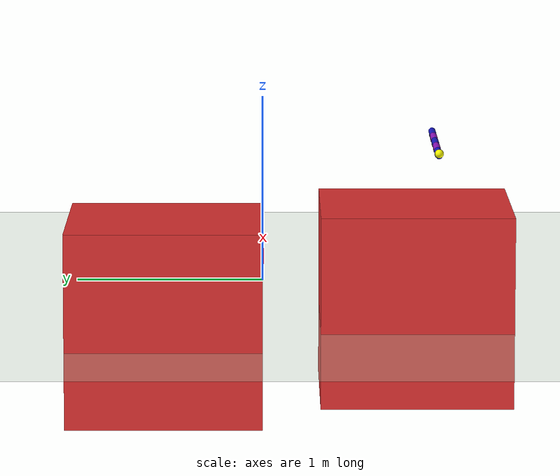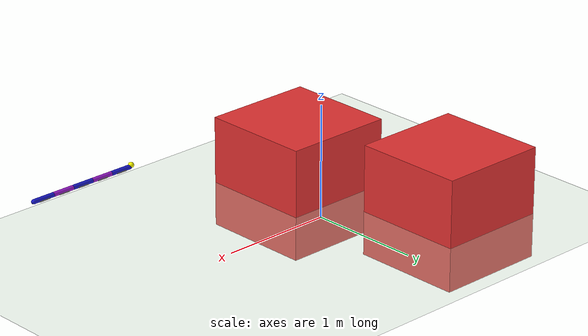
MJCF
<?xml version="1.0" ?>
<mujoco model="snake">
  <compiler angle="radian"/>
  <!-- Enable self-collision globally here -->
  <option timestep="0.01"/>
  <default>
    <!-- Increased damping and added solref/solimp for improved joint stability -->
    <joint armature="0.1" damping="1.0"/>
    <geom contype="1" conaffinity="1" friction="1 0.1 0.1" density="1000"/>
  </default>

<visual>
  <global offwidth="1500" offheight="1500"/>
</visual>

  <asset>
        <texture builtin="gradient" height="100" rgb1="1 1 1" rgb2="0 0 0" type="skybox" width="100"/>
        <texture builtin="flat" height="1278" mark="cross" markrgb="1 1 1" name="texgeom" random="0.01"
                 rgb1="0.8 0.6 0.4" rgb2="0.8 0.6 0.4" type="cube" width="127"/>
        <texture builtin="checker" height="100" name="texplane" rgb1="0 0 0" rgb2="0.8 0.8 0.8" type="2d" width="100"/>
        <material name="MatPlane" reflectance="0.5" shininess="1" specular="1" texrepeat="80 80" texture="texplane"/>
        <!-- 80 80 is one le -->
        <material name="geom" texture="texgeom" texuniform="true"/>

        <!-- My Textures -->
        <material name="MatTarget" rgba="1 0 0 1" reflectance="0.05" shininess="0.1" specular="0.1"/>
    </asset>

  <worldbody>
    <light cutoff="100" diffuse="1 1 1" dir="-0 0 -1.3" directional="true" exponent="1" pos="0 0 1.3"
               specular=".1 .1 .1"/>
    <geom name="floor" size="80 80 10" material="geom" conaffinity="1" condim="3" pos="0 0 -0.1" rgba="0.8 0.9 0.8 1" type="plane"/>

    <camera name="main_cam" fovy="10" pos="0.5 2.8794 -0.6840" xyaxes="0.9397 0 0  0 0.3420 0.9397"/>

    <geom name="box"
          type="box"
          pos="-0.5 -0.8 0.0"
          size="0.5 0.5 0.5"
          density="1000"
          rgba="0.9 0.2 0.2 1"
          contype="1" conaffinity="1" condim="3"/>

    <geom name="box2"
          type="box"
          pos="-1 0.5 0.0"
          size="0.5 0.5 0.5"
          density="1000"
          rgba="0.9 0.2 0.2 1"
          contype="1" conaffinity="1" condim="3"/>

    <body name="snake" pos="1.2 -1.0 0.5">

      <joint axis="1 0 0" name="slider_x" type="slide"/>
      <joint axis="0 1 0" name="slider_y" type="slide"/>
      <joint axis="0 0 1" name="slider_z" type="slide"/>
      <joint name="hinge_z" type="hinge" axis="0 0 1" pos="0 0 0" range="-2 2"/>

      <!-- Segment 1 -->
      <body name="segment1" pos="0 0 0">
        <site name="head_site"
                pos="-0.0125 0.0 0.0125"
                size="0.025"
                rgba="1 1 0 1"
                type="sphere"/>
        <inertial mass="1" pos="0.1 0 0" diaginertia="0.02 0.02 0.02"/>
        <geom name="seg1" type="capsule" fromto="0 0 0 0.2 0 0"
              size="0.02" rgba="0.1 0.1 0.8 1" mass="1"/>
        <geom name="belly1" type="box" pos="0.1 0 -0.01" size="0.05 0.02 0.005"
              friction="10 0.1 0.1" rgba="0.5 0.5 0.5 1"/>

        <!-- Segment 2 -->
        <body name="segment2" pos="0.2 0 0">
          <inertial mass="1" pos="0.1 0 0" diaginertia="0.02 0.02 0.02"/>
          <geom name="seg2" type="capsule" fromto="0 0 0 0.2 0 0"
                size="0.02" rgba="0.6 0.1 0.8 1" mass="1"/>
          <geom name="belly2" type="box" pos="0.1 0 -0.01" size="0.05 0.02 0.005"
              friction="10 0.1 0.1" rgba="0.5 0.5 0.5 1"/>
          <joint name="joint2" type="hinge" axis="0 0 1" pos="0 0 0" range="-2 2"/>

          <!-- Segment 3 -->
          <body name="segment3" pos="0.2 0 0">
            <inertial mass="1" pos="0.1 0 0" diaginertia="0.02 0.02 0.02"/>
            <geom name="seg3" type="capsule" fromto="0 0 0 0.2 0 0"
                  size="0.02" rgba="0.1 0.1 0.8 1" mass="1"/>
            <geom name="belly3" type="box" pos="0.1 0 -0.01" size="0.05 0.02 0.005"
              friction="10 0.1 0.1" rgba="0.5 0.5 0.5 1"/>
            <joint name="joint3" type="hinge" axis="0 0 1" pos="0 0 0" range="-2 2"/>

            <!-- Segment 4 -->
            <body name="segment4" pos="0.2 0 0">
              <inertial mass="1" pos="0.1 0 0" diaginertia="0.02 0.02 0.02"/>
              <geom name="seg4" type="capsule" fromto="0 0 0 0.2 0 0"
                    size="0.02" rgba="0.6 0.1 0.8 1" mass="1"/>
              <geom name="belly4" type="box" pos="0.1 0 -0.01" size="0.05 0.02 0.005"
              friction="10 0.1 0.1" rgba="0.5 0.5 0.5 1"/>
              <joint name="joint4" type="hinge" axis="0 0 1" pos="0 0 0" range="-2 2"/>

              <!-- Segment 5 -->
              <body name="segment5" pos="0.2 0 0">
                <inertial mass="1" pos="0.1 0 0" diaginertia="0.02 0.02 0.02"/>
                <geom name="seg5" type="capsule" fromto="0 0 0 0.2 0 0"
                      size="0.02" rgba="0.1 0.1 0.8 1" mass="1"/>
                <geom name="belly5" type="box" pos="0.1 0 -0.01" size="0.05 0.02 0.005"
              friction="10 0.1 0.1" rgba="0.5 0.5 0.5 1"/>

                <joint name="joint5" type="hinge" axis="0 0 1" pos="0 0 0" range="-2 2"/>
              </body>
            </body>
          </body>
        </body>
      </body>
    </body>
  </worldbody>

  <actuator>
    <!-- Increased gear values to help the motors hold the segments together -->
    <motor joint="joint2" ctrlrange="-10 10" gear="50"/>
    <motor joint="joint3" ctrlrange="-10 10" gear="50"/>
    <motor joint="joint4" ctrlrange="-10 10" gear="50"/>
    <motor joint="joint5" ctrlrange="-10 10" gear="50"/>
  </actuator>

   <sensor>
    <jointpos name="j2_sensor" joint="joint2"/>
    <jointpos name="j3_sensor" joint="joint3"/>
    <jointpos name="j4_sensor" joint="joint4"/>
    <jointpos name="j5_sensor" joint="joint5"/>
    <touch name="head_contact" site="head_site"/>
    <framepos name="head_xyz" objtype="site" objname="head_site"/>
  </sensor>
</mujoco>
